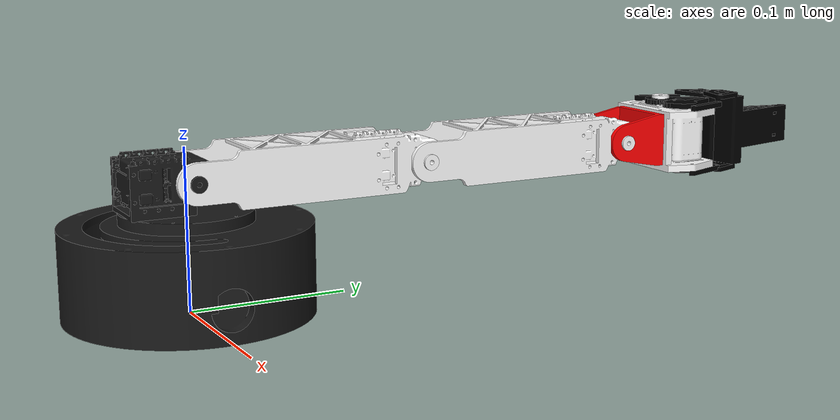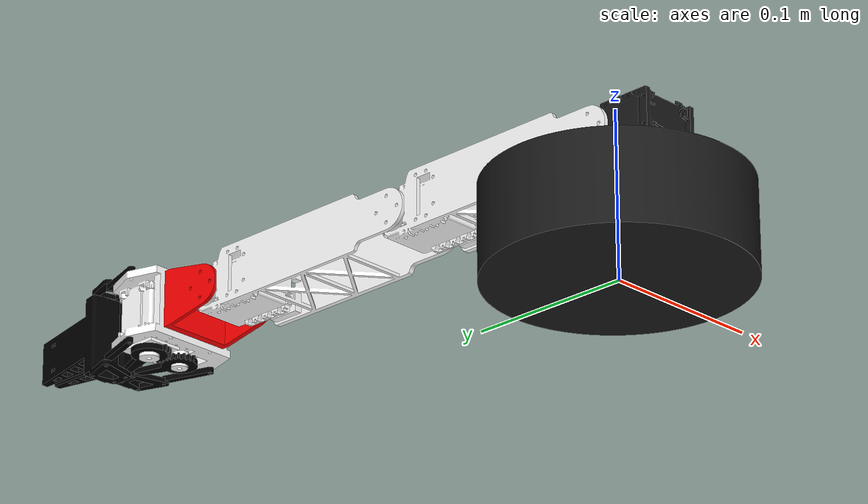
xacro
<?xml version="1.0"?>
<robot xmlns:xacro="http://www.ros.org/wiki/xacro" name="my_robot_arm">
    <xacro:arg name="use_fake_hardware" default="false"/>

    <link name="base_link">
        <visual>
            <geometry>
                <mesh filename="package://robot_arm/meshes/base_link.stl" scale="0.001 0.001 0.001"/>
            </geometry>
            <origin xyz="0.0 0.0 0.0" rpy="0.0 0.0 0.0"/>
            <material name="black">
                <color rgba="0.1 0.1 0.1 1"/>
            </material>

        </visual>
        <collision>
            <geometry>
                <mesh filename="package://robot_arm/meshes/base_link.stl" scale="0.001 0.001 0.001"/>
            </geometry>
            <origin xyz="0.0 0.0 0.0" rpy="0.0 0.0 0.0"/>
        </collision>
    </link>

    <link name="bottom_frame">
        <visual>
            <geometry>
                <mesh filename="package://robot_arm/meshes/bottom_frame.stl" scale="0.001 0.001 0.001"/>
            </geometry>
            <origin xyz="0.0 0.0 0.0" rpy="0.0 0.0 1.57"/>
            <material name="black">
                <color rgba="0.1 0.1 0.1 1"/>
            </material>

        </visual>
        <collision>
            <geometry>
                <mesh filename="package://robot_arm/meshes/bottom_frame.stl" scale="0.001 0.001 0.001"/>
            </geometry>
            <origin xyz="0.0 0.0 0.0" rpy="0.0 0.0 1.57"/>
        </collision>
    </link>
    <link name="link1">
        <visual>
            <geometry>
                <mesh filename="package://robot_arm/meshes/arm.stl" scale="0.001 0.001 0.001"/>
            </geometry>
            <origin xyz="0.0 0.0 0.0" rpy="0.0 1.57 1.57"/>
            <material name="white">
                <color rgba="1 1 1 1"/>
            </material>
        </visual>
        <collision>
            <geometry>
                <mesh filename="package://robot_arm/meshes/arm.stl" scale="0.001 0.001 0.001"/>
            </geometry>
            <origin xyz="0.0 0.0 0.0" rpy="0.0 1.57 1.57"/>
        </collision>
    </link>
    <link name="link2">
        <visual>
            <geometry>
                <mesh filename="package://robot_arm/meshes/arm.stl" scale="0.001 0.001 0.001"/>
            </geometry>
            <origin xyz="0.0 0.0 0.0" rpy="0.0 1.57 1.57"/>
            <material name="white">
                <color rgba="1 1 1 1"/>
            </material>
        </visual>
        <collision>
            <geometry>
                <mesh filename="package://robot_arm/meshes/arm.stl" scale="0.001 0.001 0.001"/>
            </geometry>
            <origin xyz="0.0 0.0 0.0" rpy="0.0 1.57 1.57"/>
        </collision>
    </link>
    <link name="end_effector">
        <visual>
            <geometry>
                <mesh filename="package://robot_arm/meshes/end_effector.stl" scale="0.001 0.001 0.001"/>
            </geometry>
            <origin xyz="0.0 0.0 0.0" rpy="0.0 1.57 1.57"/>
            <material name="red">
                <color rgba="1 0 0 1"/>
            </material>
        </visual>
        <collision>
            <geometry>
                <mesh filename="package://robot_arm/meshes/end_effector.stl" scale="0.001 0.001 0.001"/>
            </geometry>
            <origin xyz="0.0 0.0 0.0" rpy="0.0 1.57 1.57"/>
        </collision>
    </link>
    <link name="gripper_base_link">
        <visual>
            <geometry>
                <mesh filename="package://robot_arm/meshes/hand_base.stl" scale="0.001 0.001 0.001"/>
            </geometry>
            <origin xyz="0.0 0.0 0.0" rpy="0.0 1.57 1.57"/>
            <material name="white">
                <color rgba="1 1 1 1"/>
            </material>
        </visual>
        <collision>
            <geometry>
                <mesh filename="package://robot_arm/meshes/hand_base.stl" scale="0.001 0.001 0.001"/>
            </geometry>
            <origin xyz="0.0 0.0 0.0" rpy="0.0 1.57 1.57"/>
        </collision>
    </link>

    <link name="finger_left_frame">
        <visual>
            <geometry>
                <mesh filename="package://robot_arm/meshes/finger_left_frame.stl" scale="0.001 0.001 0.001"/>
            </geometry>
            <origin xyz="0.0 0.0 0.0" rpy="0.0 1.57 1.57"/>
            <material name="black">
                <color rgba="0 0 0 1"/>
            </material>
        </visual>
        <collision>
            <geometry>
                <mesh filename="package://robot_arm/meshes/finger_left_frame.stl" scale="0.001 0.001 0.001"/>
            </geometry>
            <origin xyz="0.0 0.0 0.0" rpy="0.0 1.57 1.57"/>
        </collision>
    </link>
    <link name="finger_left_link">
            <visual>
                <geometry>
                    <mesh filename="package://robot_arm/meshes/finger_right.stl" scale="0.001 0.001 0.001"/>
                </geometry>
                <origin xyz="0.0 0.0 0.0" rpy="0.0 -1.57 -1.57"/>
                <material name="black">
                    <color rgba="0 0 0 1"/>
                </material>
            </visual>
            <collision>
                <geometry>
                    <mesh filename="package://robot_arm/meshes/finger_right.stl" scale="0.001 0.001 0.001"/>
                </geometry>
                <origin xyz="0.0 0.0 0.0" rpy="0.0 -1.57 -1.57"/>
            </collision>
    </link>
    <link name="finger_right_frame">
        <visual>
            <geometry>
                <mesh filename="package://robot_arm/meshes/finger_right_frame.stl" scale="0.001 0.001 0.001"/>
            </geometry>
            <origin xyz="0.0 0.0 0.0" rpy="0.0 1.57 1.57"/>
            <material name="black">
                <color rgba="0 0 0 1"/>
            </material>
        </visual>
        <collision>
            <geometry>
                <mesh filename="package://robot_arm/meshes/finger_right_frame.stl" scale="0.001 0.001 0.001"/>
            </geometry>
            <origin xyz="0.0 0.0 0.0" rpy="0.0 1.57 1.57"/>
        </collision>
    </link>
    <link name="finger_right_link">
        <visual>
            <geometry>
                <mesh filename="package://robot_arm/meshes/finger_right.stl" scale="0.001 0.001 0.001"/>
            </geometry>
            <origin xyz="0.0 0.0 0.0" rpy="0.0 1.57 1.57"/>
            <material name="black">
                <color rgba="0 0 0 1"/>
            </material>
        </visual>
        <collision>
            <geometry>
                <mesh filename="package://robot_arm/meshes/finger_right.stl" scale="0.001 0.001 0.001"/>
            </geometry>
            <origin xyz="0.0 0.0 0.0" rpy="0.0 1.57 1.57"/>
        </collision>
    </link>
    <joint name="joint0" type="revolute">
        <parent link="base_link"/>
        <child link="bottom_frame"/>
        <origin xyz="0.0 0.0 0.0468" rpy="0.0 0.0 0.0"/>
        <axis xyz="0 0 1"/>
        <limit lower="-1.57" upper="1.57" effort="1.0" velocity="1.0"/>
    </joint>
    <joint name="joint1" type="revolute">
        <parent link="bottom_frame"/>
        <child link="link1"/>
        <origin xyz="0.0 0.0 0.0347" rpy="0.0 0.0 0.0"/>
        <axis xyz="-1 0 0"/>
        <limit lower="-2.1012" upper="0.0" effort="1.0" velocity="1.0"/>
    </joint>
    <joint name="joint2" type="revolute">
        <parent link="link1"/>
        <child link="link2"/>
        <origin xyz="0.0 0.15 0.0" rpy="0.0 0.0 0.0"/>
        <axis xyz="-1 0 0"/>
        <limit lower="-1.5708" upper="1.5708" effort="1.0" velocity="1.0"/>
    </joint>
    <joint name="joint3" type="revolute">
        <parent link="link2"/>
        <child link="end_effector"/>
        <origin xyz="0.0 0.15 0.0" rpy="0.0 0.0 0.0"/>
        <axis xyz="-1 0 0"/>
        <limit lower="-1.5708" upper="1.5708" effort="1.0" velocity="1.0"/>
    </joint>
    <joint name="gripper_joint" type="fixed">
        <parent link="end_effector"/>
        <child link="gripper_base_link"/>
        <origin xyz="0.0 0.03 0.0" rpy="0.0 0.0 0.0"/>
    </joint>
    <joint name="gripper_left_joint" type="revolute">
        <parent link="gripper_base_link"/>
        <child link="finger_left_frame"/>
        <origin xyz="0.012 0.024 0.0" rpy="0.0 0.0 0.0"/>
        <axis xyz="0 0 1"/>
        <limit lower="-1.57" upper="0.0" effort="1.0" velocity="1.0"/>
    </joint>
    <joint name="gripper_left_hand" type="revolute">
        <parent link="finger_left_frame"/>
        <child link="finger_left_link"/>
        <origin xyz="-0.009 0.03 0.0" rpy="0.0 0.0 0.0"/>
        <axis xyz="0 0 1"/>
        <mimic joint="gripper_left_joint" multiplier="-1" offset="0"/>
        <limit lower="0.0" upper="1.57" effort="1.0" velocity="1.0"/>
    </joint>
    <joint name="gripper_right_joint" type="revolute">
        <parent link="gripper_base_link"/>
        <child link="finger_right_frame"/>
        <origin xyz="-0.012 0.024 0.0" rpy="0.0 0.0 0.0"/>
        <axis xyz="0 0 1"/>
        <mimic joint="gripper_left_joint" multiplier="-1" offset="0"/>
        <limit lower="0.0" upper="1.57" effort="1.0" velocity="1.0"/>
    </joint>
    <joint name="gripper_right_hand" type="revolute">
        <parent link="finger_right_frame"/>
        <child link="finger_right_link"/>
        <origin xyz="0.009 0.03 0.0" rpy="0.0 0.0 0.0"/>
        <axis xyz="0 0 1"/>
        <mimic joint="gripper_right_joint" multiplier="-1" offset="0"/>
        <limit lower="-1.57" upper="0.0" effort="1.0" velocity="1.0"/>
    </joint>

  <ros2_control name="DynamixelSystem" type="system">
    <hardware>
        <xacro:if value="$(arg use_fake_hardware)">
            <plugin>mock_components/GenericSystem</plugin>
        </xacro:if>

        <xacro:unless value="$(arg use_fake_hardware)">
            <plugin>dynamixel_hardware_interface/DynamixelHardware</plugin>
            <param name="port_name">/dev/ttyUSB0</param>
            <param name="baud_rate">115200</param>

            <param name="dynamixel_model_folder">/param/dxl_model</param>

            <param name="error_timeout_ms">5000</param>

            <param name="number_of_joints">5</param>
            <param name="number_of_transmissions">5</param>
            <param name="dynamixel_state_pub_msg_name">dynamixel_hardware_interface/dxl_state</param>
            <param name="get_dynamixel_data_srv_name">dynamixel_hardware_interface/get_dxl_data</param>
            <param name="set_dynamixel_data_srv_name">dynamixel_hardware_interface/set_dxl_data</param>
            <param name="reboot_dxl_srv_name">dynamixel_hardware_interface/reboot_dxl</param>
            <param name="set_dxl_torque_srv_name">dynamixel_hardware_interface/set_dxl_torque</param>
        </xacro:unless>
    </hardware>

    <joint name="joint0">
      <param name="id">0</param>
      <command_interface name="position"/>
      <state_interface name="position"/>
      <state_interface name="velocity"/>
    </joint>
    <joint name="joint1">
      <param name="id">1</param>
      <command_interface name="position"/>
      <state_interface name="position"/>
      <state_interface name="velocity"/>
    </joint>
    <joint name="joint2">
      <param name="id">2</param>
      <command_interface name="position"/>
      <state_interface name="position"/>
      <state_interface name="velocity"/>
    </joint>
    <joint name="joint3">
      <param name="id">3</param>
      <command_interface name="position"/>
      <state_interface name="position"/>
      <state_interface name="velocity"/>
    </joint>
    <joint name="gripper_left_joint">
      <param name="id">4</param>
      <command_interface name="position"/>
      <state_interface name="position"/>
      <state_interface name="velocity"/>
    </joint>

    <gpio name="dxl_joint0">
      <param name="type">dxl</param>
      <param name="ID">0</param>
      <command_interface name="Goal Position"/>
      <state_interface name="Present Position"/>
      <state_interface name="Present Velocity"/>
      <param name="Return Delay Time">0</param>
    </gpio>

    <gpio name="dxl_joint1">
      <param name="type">dxl</param>
      <param name="ID">1</param>
      <command_interface name="Goal Position"/>
      <state_interface name="Present Position"/>
      <state_interface name="Present Velocity"/>
      <param name="Return Delay Time">0</param>
    </gpio>

    <gpio name="dxl_joint2">
      <param name="type">dxl</param>
      <param name="ID">2</param>
      <command_interface name="Goal Position"/>
      <state_interface name="Present Position"/>
      <state_interface name="Present Velocity"/>
      <param name="Return Delay Time">0</param>
    </gpio>

    <gpio name="dxl_joint3">
      <param name="type">dxl</param>
      <param name="ID">3</param>
      <command_interface name="Goal Position"/>
      <state_interface name="Present Position"/>
      <state_interface name="Present Velocity"/>
      <param name="Return Delay Time">0</param>
    </gpio>

    <gpio name="dxl_joint4">
      <param name="type">dxl</param>
      <param name="ID">4</param>
      <command_interface name="Goal Position"/>
      <state_interface name="Present Position"/>
      <state_interface name="Present Velocity"/>
      <param name="Return Delay Time">0</param>
    </gpio>
    </ros2_control>

</robot>
